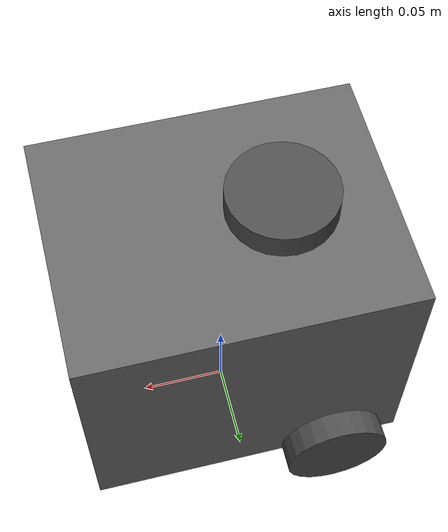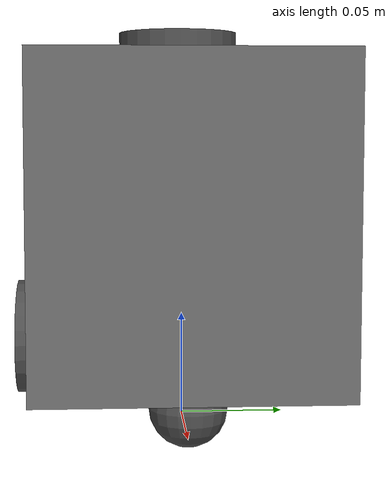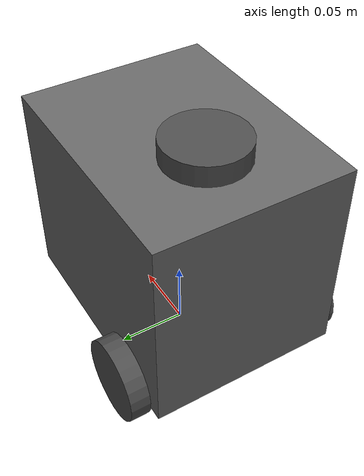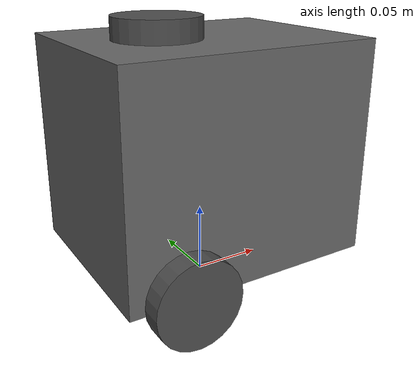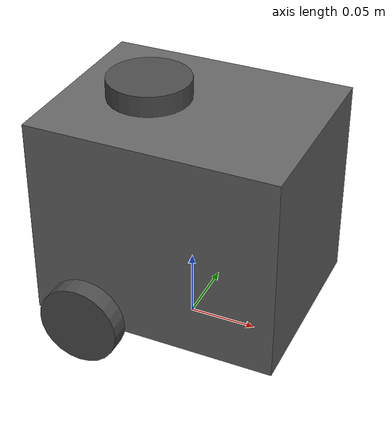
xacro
<?xml version="1.0"?>
<!-- Basic differential drive mobile base -->
<robot xmlns:xacro="http://www.ros.org/wiki/xacro" name="kiki_robot">

  <xacro:arg name="prefix" default="" />

  <xacro:include filename="$(find kiki_description)/urdf/kiki.materials.xacro" />
  <xacro:include filename="$(find kiki_description)/urdf/kiki_description.urdf.xacro" />

  <!-- Import diffbot ros2_control description -->
  <xacro:include filename="$(find kiki_control)/plugin/kikibot.ros2_control.xacro" />

  <xacro:kiki_desc_urdf prefix="$(arg prefix)" />

  <xacro:kiki_ros2_control name="" prefix="$(arg prefix)" />

</robot>

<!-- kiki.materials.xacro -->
<!--
Copied from ROS1 example:
https://github.com/ros-simulation/gazebo_ros_demos/blob/kinetic-devel/rrbot_description/urdf/materials.xacro
-->
<robot xmlns:xacro="http://www.ros.org/wiki/xacro" name="kiki_robot">

  <material name="black">
      <color rgba="0.0 0.0 0.0 1.0"/>
  </material>

  <material name="dark">
    <color rgba="0.3 0.3 0.3 1.0"/>
  </material>

  <material name="light_black">
    <color rgba="0.4 0.4 0.4 1.0"/>
  </material>

  <material name="blue">
    <color rgba="0.0 0.0 0.8 1.0"/>
  </material>

  <material name="green">
    <color rgba="0.0 0.8 0.0 1.0"/>
  </material>

  <material name="grey">
    <color rgba="0.5 0.5 0.5 1.0"/>
  </material>

  <material name="orange">
    <color rgba="1.0 0.4235 0.0392 1.0"/>
  </material>

  <material name="brown">
    <color rgba="0.8706 0.8118 0.7647 1.0"/>
  </material>

  <material name="red">
    <color rgba="0.8 0.0 0.0 1.0"/>
  </material>

  <material name="white">
    <color rgba="1.0 1.0 1.0 1.0"/>
  </material>

</robot>

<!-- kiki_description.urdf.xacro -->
<robot xmlns:xacro="http://www.ros.org/wiki/xacro" name="kiki_robot">

  <xacro:macro name="kiki_desc_urdf" params="prefix">

  <link name="base_footprint"/>

  <joint name="base_joint" type="fixed">
    <parent link="base_footprint"/>
    <child link="base_link"/>
    <origin xyz="0.0 0.0 0.1" rpy="0 0 0"/>
  </joint>

  <link name="base_link">
    <visual>
      <origin xyz="0 0 0.0" rpy="0 0 0"/>
      <geometry>
        <box size="0.18 0.14 0.15"/>
      </geometry>
      <material name="light_black"/>
    </visual>

    <collision>
      <origin xyz="0 0 0" rpy="0 0 0"/>
      <geometry>
        <box size="0.18 0.140 0.15"/>
      </geometry>
    </collision>

  </link>

  <joint name="wheel_left_joint" type="continuous">
    <parent link="base_link"/>
    <child link="wheel_left_link"/>
    <origin xyz="-0.05 0.077 -0.07" rpy="0 0 0"/>
    <axis xyz="0 1 0"/>
  </joint>

  <link name="wheel_left_link">
    <visual>
      <origin xyz="0 0 0" rpy="1.57 0 0"/>
      <geometry>
        <cylinder radius="0.03" length="0.015"/>
      </geometry>
      <material name="dark"/>
    </visual>

    <collision>
      <origin xyz="0 0 0" rpy="1.57 0 0"/>
      <geometry>
        <cylinder length="0.018" radius="0.033"/>
      </geometry>
    </collision>

  </link>

  <joint name="wheel_right_joint" type="continuous">
    <parent link="base_link"/>
    <child link="wheel_right_link"/>
    <origin xyz="-0.05 -0.077 -0.07" rpy="0 0 0"/>
    <axis xyz="0 1 0"/>
  </joint>

  <link name="wheel_right_link">
    <visual>
      <origin xyz="0 0 0" rpy="1.57 0 0"/>
      <geometry>
        <cylinder radius="0.03" length="0.015"/>
      </geometry>
      <material name="dark"/>
    </visual>

    <collision>
      <origin xyz="0 0 0" rpy="1.57 0 0"/>
      <geometry>
        <cylinder length="0.018" radius="0.033"/>
      </geometry>
    </collision>

  </link>

  <joint name="caster_joint" type="fixed">
    <parent link="base_link"/>
    <child link="caster_link"/>
    <origin xyz="0.05 0 -0.085" rpy="0 0 0"/>
  </joint>

  <link name="caster_link">
    <visual>
      <origin xyz="0 0 0" rpy="0 0 0"/>
      <geometry>
        <sphere radius="0.018"/>
      </geometry>
      <material name="dark"/>
    </visual>
    <collision>
      <origin xyz="0 0.0 0.0" rpy="0 0 0"/>
      <geometry>
        <sphere radius="0.018"/>
      </geometry>
    </collision>

  </link>

  <joint name="scan_joint" type="fixed">
    <parent link="base_link"/>
    <child link="base_scan"/>
    <origin xyz="-0.032 0 0.08" rpy="0 0 0"/>
  </joint>

  <link name="base_scan">
    <visual>
      <origin xyz="0 0 0" rpy="0 0 0"/>
      <geometry>
        <cylinder length="0.02" radius="0.03"/>
      </geometry>
      <material name="dark"/>
    </visual>

    <collision>
      <origin xyz="0.0 0 0" rpy="0 0 0"/>
      <geometry>
        <cylinder length="0.02" radius="0.03"/>
      </geometry>
    </collision>

  </link>

  </xacro:macro>

</robot>
